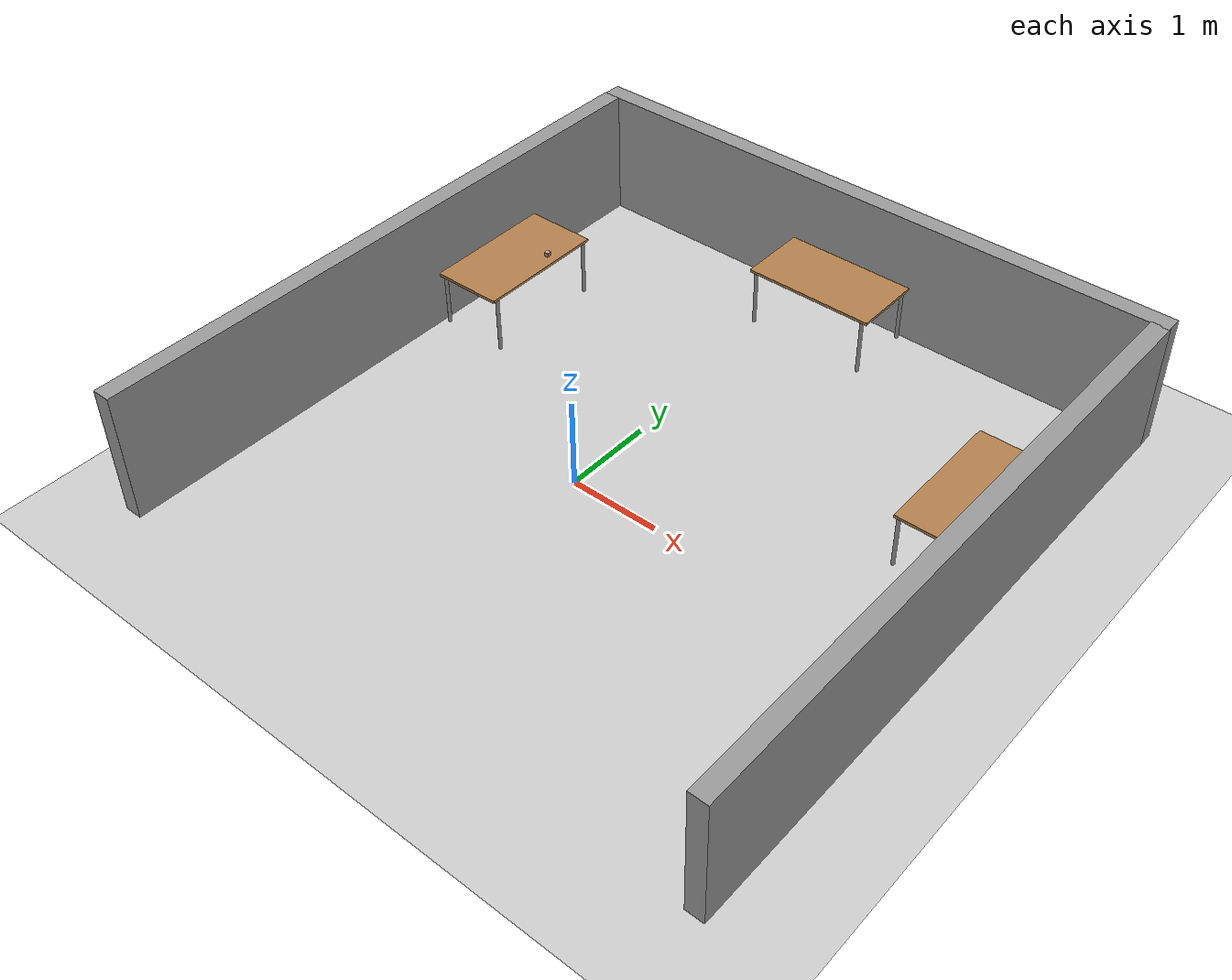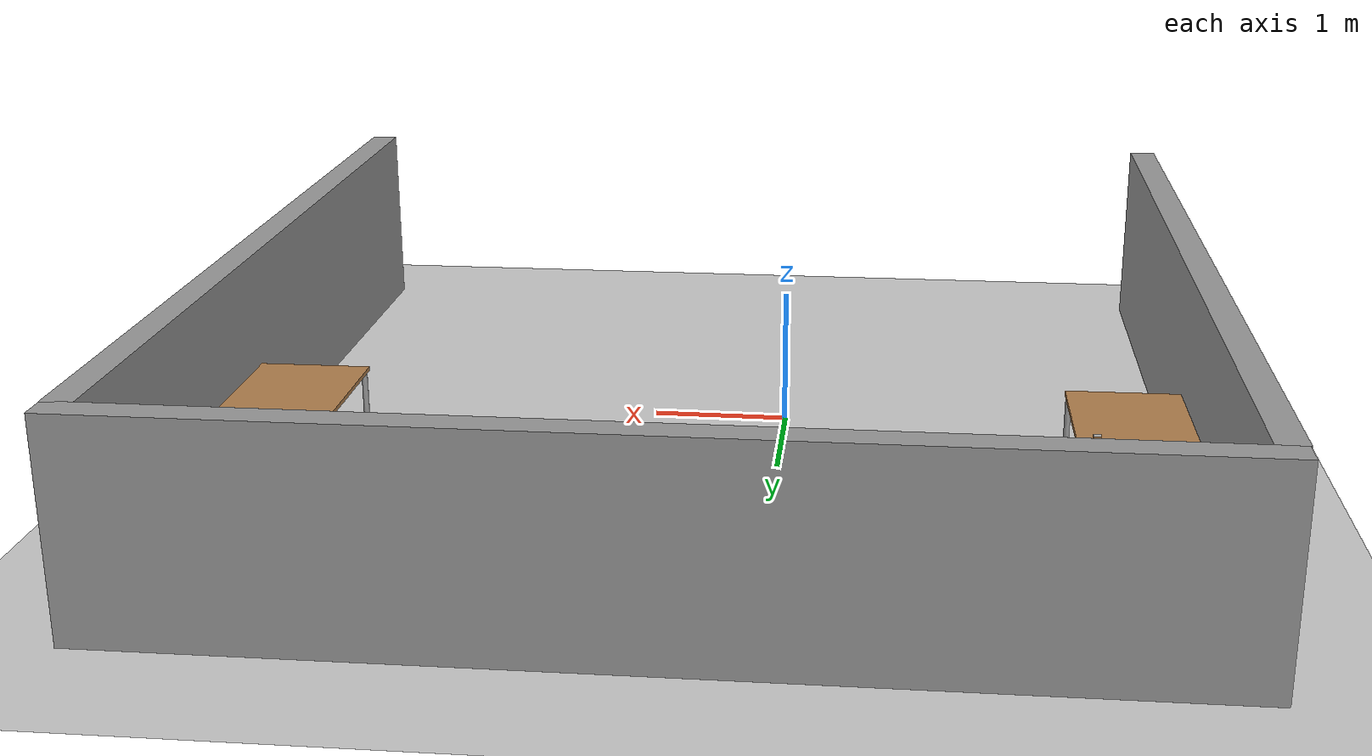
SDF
<sdf version="1.7">
 <world name="default">
  <model name="ground_plane">
   <static>1</static>
   <link name="link">
    <collision name="collision">
     <geometry><plane><normal>0 0 1</normal><size>100 100</size></plane></geometry>
     <surface>
      <contact><collide_bitmask>65535</collide_bitmask></contact>
      <friction><ode><mu>100</mu><mu2>50</mu2></ode></friction>
     </surface>
    </collision>
    <visual name="visual">
     <cast_shadows>0</cast_shadows>
     <geometry><plane><normal>0 0 1</normal><size>100 100</size></plane></geometry>
     <material>
      <script><uri>file://media/materials/scripts/gazebo.material</uri><name>Gazebo/Grey</name></script>
     </material>
    </visual>
   </link>
  </model>
  <model name="wood_cube_2">
   <link name="link">
    <pose>0 0 0.025 0 -0 0</pose>
    <inertial>
     <mass>0.0565</mass>
     <inertia>
      <ixx>2.35417e-05</ixx>
      <ixy>0</ixy>
      <ixz>0</ixz>
      <iyy>2.35417e-05</iyy>
      <iyz>0</iyz>
      <izz>2.35417e-05</izz>
     </inertia>
    </inertial>
    <collision name="collision">
     <geometry><box><size>0.05 0.05 0.05</size></box></geometry>
     <surface>
      <contact>
       <poissons_ratio>0.347</poissons_ratio>
       <elastic_modulus>8.8e+09</elastic_modulus>
       <ode><kp>100000</kp><kd>1</kd><max_vel>1</max_vel><min_depth>0.001</min_depth></ode>
      </contact>
      <friction>
       <torsional>
        <coefficient>1</coefficient>
        <use_patch_radius>0</use_patch_radius>
        <surface_radius>0.05</surface_radius>
       </torsional>
      </friction>
     </surface>
    </collision>
    <visual name="visual">
     <geometry><box><size>0.05 0.05 0.05</size></box></geometry>
     <material>
      <script><uri>file://media/materials/scripts/gazebo.material</uri><name>Gazebo/Wood</name></script>
     </material>
    </visual>
   </link>
   <frame name="Apriltag36_11_00002::__model__" attached_to="Apriltag36_11_00002::main">
    <pose relative_to="__model__">0 0 0.05 0 -0 0</pose>
   </frame>
   <link name="Apriltag36_11_00002::main">
    <pose relative_to="Apriltag36_11_00002::__model__">0 0 0 0 -0 0</pose>
    <visual name="main_Visual">
     <geometry><box><size>0.05 0.05 0.001</size></box></geometry>
     <material>
      <script>
       <uri>model://Apriltag36_11_00002/materials/scripts</uri>
       <uri>model://Apriltag36_11_00002/materials/textures</uri>
       <name>Apriltag36_11_00002</name>
      </script>
     </material>
    </visual>
    <inertial>
     <inertia><ixx>1</ixx><ixy>0</ixy><ixz>0</ixz><iyy>1</iyy><iyz>0</iyz><izz>1</izz></inertia>
     <mass>1</mass>
    </inertial>
   </link>
   <static>0</static>
   <joint name="Apriltag36_11_00002_joint" type="fixed">
    <child>Apriltag36_11_00002::main</child>
    <parent>link</parent>
   </joint>
   <pose>-2.15395 1.98713 0.663974 0 1e-06 1e-06</pose>
  </model>
  <model name="table_0_clone">
   <static>1</static>
   <link name="link">
    <collision name="surface">
     <pose>0 0 0.65 0 -0 0</pose>
     <geometry><box><size>1.5 0.8 0.03</size></box></geometry>
     <surface><friction><ode><mu>0.6</mu><mu2>0.6</mu2></ode></friction></surface>
    </collision>
    <visual name="visual1">
     <pose>0 0 0.65 0 -0 0</pose>
     <geometry><box><size>1.5 0.8 0.03</size></box></geometry>
     <material>
      <script><uri>file://media/materials/scripts/gazebo.material</uri><name>Gazebo/Wood</name></script>
     </material>
    </visual>
    <collision name="front_left_leg">
     <pose>0.68 0.38 0.32 0 -0 0</pose>
     <geometry><cylinder><radius>0.02</radius><length>0.65</length></cylinder></geometry>
    </collision>
    <visual name="front_left_leg">
     <pose>0.68 0.38 0.32 0 -0 0</pose>
     <geometry><cylinder><radius>0.02</radius><length>0.65</length></cylinder></geometry>
     <material>
      <script><uri>file://media/materials/scripts/gazebo.material</uri><name>Gazebo/Grey</name></script>
     </material>
    </visual>
    <collision name="front_right_leg">
     <pose>0.68 -0.38 0.32 0 -0 0</pose>
     <geometry><cylinder><radius>0.02</radius><length>0.65</length></cylinder></geometry>
    </collision>
    <visual name="front_right_leg">
     <pose>0.68 -0.38 0.32 0 -0 0</pose>
     <geometry><cylinder><radius>0.02</radius><length>0.65</length></cylinder></geometry>
     <material>
      <script><uri>file://media/materials/scripts/gazebo.material</uri><name>Gazebo/Grey</name></script>
     </material>
    </visual>
    <collision name="back_right_leg">
     <pose>-0.68 -0.38 0.32 0 -0 0</pose>
     <geometry><cylinder><radius>0.02</radius><length>0.65</length></cylinder></geometry>
    </collision>
    <visual name="back_right_leg">
     <pose>-0.68 -0.38 0.32 0 -0 0</pose>
     <geometry><cylinder><radius>0.02</radius><length>0.65</length></cylinder></geometry>
     <material>
      <script><uri>file://media/materials/scripts/gazebo.material</uri><name>Gazebo/Grey</name></script>
     </material>
    </visual>
    <collision name="back_left_leg">
     <pose>-0.68 0.38 0.32 0 -0 0</pose>
     <geometry><cylinder><radius>0.02</radius><length>0.65</length></cylinder></geometry>
    </collision>
    <visual name="back_left_leg">
     <pose>-0.68 0.38 0.32 0 -0 0</pose>
     <geometry><cylinder><radius>0.02</radius><length>0.65</length></cylinder></geometry>
     <material>
      <script><uri>file://media/materials/scripts/gazebo.material</uri><name>Gazebo/Grey</name></script>
     </material>
    </visual>
   </link>
   <pose>0.443345 3.59142 0 0 -0 0</pose>
  </model>
  <model name="table_0_clone_clone_clone">
   <static>1</static>
   <link name="link">
    <collision name="surface">
     <pose>0 0 0.65 0 -0 0</pose>
     <geometry><box><size>1.5 0.8 0.03</size></box></geometry>
     <surface><friction><ode><mu>0.6</mu><mu2>0.6</mu2></ode></friction></surface>
    </collision>
    <visual name="visual1">
     <pose>0 0 0.65 0 -0 0</pose>
     <geometry><box><size>1.5 0.8 0.03</size></box></geometry>
     <material>
      <script><uri>file://media/materials/scripts/gazebo.material</uri><name>Gazebo/Wood</name></script>
     </material>
    </visual>
    <collision name="front_left_leg">
     <pose>0.68 0.38 0.32 0 -0 0</pose>
     <geometry><cylinder><radius>0.02</radius><length>0.65</length></cylinder></geometry>
    </collision>
    <visual name="front_left_leg">
     <pose>0.68 0.38 0.32 0 -0 0</pose>
     <geometry><cylinder><radius>0.02</radius><length>0.65</length></cylinder></geometry>
     <material>
      <script><uri>file://media/materials/scripts/gazebo.material</uri><name>Gazebo/Grey</name></script>
     </material>
    </visual>
    <collision name="front_right_leg">
     <pose>0.68 -0.38 0.32 0 -0 0</pose>
     <geometry><cylinder><radius>0.02</radius><length>0.65</length></cylinder></geometry>
    </collision>
    <visual name="front_right_leg">
     <pose>0.68 -0.38 0.32 0 -0 0</pose>
     <geometry><cylinder><radius>0.02</radius><length>0.65</length></cylinder></geometry>
     <material>
      <script><uri>file://media/materials/scripts/gazebo.material</uri><name>Gazebo/Grey</name></script>
     </material>
    </visual>
    <collision name="back_right_leg">
     <pose>-0.68 -0.38 0.32 0 -0 0</pose>
     <geometry><cylinder><radius>0.02</radius><length>0.65</length></cylinder></geometry>
    </collision>
    <visual name="back_right_leg">
     <pose>-0.68 -0.38 0.32 0 -0 0</pose>
     <geometry><cylinder><radius>0.02</radius><length>0.65</length></cylinder></geometry>
     <material>
      <script><uri>file://media/materials/scripts/gazebo.material</uri><name>Gazebo/Grey</name></script>
     </material>
    </visual>
    <collision name="back_left_leg">
     <pose>-0.68 0.38 0.32 0 -0 0</pose>
     <geometry><cylinder><radius>0.02</radius><length>0.65</length></cylinder></geometry>
    </collision>
    <visual name="back_left_leg">
     <pose>-0.68 0.38 0.32 0 -0 0</pose>
     <geometry><cylinder><radius>0.02</radius><length>0.65</length></cylinder></geometry>
     <material>
      <script><uri>file://media/materials/scripts/gazebo.material</uri><name>Gazebo/Grey</name></script>
     </material>
    </visual>
   </link>
   <pose>-2.42573 1.75529 0 0 -0 1.57675</pose>
  </model>
  <model name="table_0_clone_clone_clone_1">
   <static>1</static>
   <link name="link">
    <collision name="surface">
     <pose>0 0 0.65 0 -0 0</pose>
     <geometry><box><size>1.5 0.8 0.03</size></box></geometry>
     <surface><friction><ode><mu>0.6</mu><mu2>0.6</mu2></ode></friction></surface>
    </collision>
    <visual name="visual1">
     <pose>0 0 0.65 0 -0 0</pose>
     <geometry><box><size>1.5 0.8 0.03</size></box></geometry>
     <material>
      <script><uri>file://media/materials/scripts/gazebo.material</uri><name>Gazebo/Wood</name></script>
     </material>
    </visual>
    <collision name="front_left_leg">
     <pose>0.68 0.38 0.32 0 -0 0</pose>
     <geometry><cylinder><radius>0.02</radius><length>0.65</length></cylinder></geometry>
    </collision>
    <visual name="front_left_leg">
     <pose>0.68 0.38 0.32 0 -0 0</pose>
     <geometry><cylinder><radius>0.02</radius><length>0.65</length></cylinder></geometry>
     <material>
      <script><uri>file://media/materials/scripts/gazebo.material</uri><name>Gazebo/Grey</name></script>
     </material>
    </visual>
    <collision name="front_right_leg">
     <pose>0.68 -0.38 0.32 0 -0 0</pose>
     <geometry><cylinder><radius>0.02</radius><length>0.65</length></cylinder></geometry>
    </collision>
    <visual name="front_right_leg">
     <pose>0.68 -0.38 0.32 0 -0 0</pose>
     <geometry><cylinder><radius>0.02</radius><length>0.65</length></cylinder></geometry>
     <material>
      <script><uri>file://media/materials/scripts/gazebo.material</uri><name>Gazebo/Grey</name></script>
     </material>
    </visual>
    <collision name="back_right_leg">
     <pose>-0.68 -0.38 0.32 0 -0 0</pose>
     <geometry><cylinder><radius>0.02</radius><length>0.65</length></cylinder></geometry>
    </collision>
    <visual name="back_right_leg">
     <pose>-0.68 -0.38 0.32 0 -0 0</pose>
     <geometry><cylinder><radius>0.02</radius><length>0.65</length></cylinder></geometry>
     <material>
      <script><uri>file://media/materials/scripts/gazebo.material</uri><name>Gazebo/Grey</name></script>
     </material>
    </visual>
    <collision name="back_left_leg">
     <pose>-0.68 0.38 0.32 0 -0 0</pose>
     <geometry><cylinder><radius>0.02</radius><length>0.65</length></cylinder></geometry>
    </collision>
    <visual name="back_left_leg">
     <pose>-0.68 0.38 0.32 0 -0 0</pose>
     <geometry><cylinder><radius>0.02</radius><length>0.65</length></cylinder></geometry>
     <material>
      <script><uri>file://media/materials/scripts/gazebo.material</uri><name>Gazebo/Grey</name></script>
     </material>
    </visual>
   </link>
   <pose>3.36807 1.74161 0 0 -0 1.57675</pose>
  </model>
  <model name="grey_wall_clone">
   <link name="link">
    <pose>-2.24116 0.206819 1.41112 0 -0 0</pose>
    <inertial>
     <inertia><ixx>0</ixx><ixy>0</ixy><ixz>0</ixz><iyy>0</iyy><iyz>0</iyz><izz>0</izz></inertia>
     <mass>0</mass>
    </inertial>
    <visual name="visual">
     <cast_shadows>0</cast_shadows>
     <geometry><box><size>7.03146 0.2 1.4608</size></box></geometry>
     <material>
      <script>
       <uri>model://grey_wall/materials/scripts</uri>
       <uri>model://grey_wall/materials/textures</uri>
       <name>vrc/grey_wall</name>
      </script>
      <shader type="pixel"/>
     </material>
    </visual>
    <collision name="collision">
     <geometry><box><size>7.03146 0.2 1.4608</size></box></geometry>
     <surface>
      <friction>
       <ode><mu>1</mu><mu2>1</mu2><fdir1>0 0 0</fdir1><slip1>0</slip1><slip2>0</slip2></ode>
       <torsional>
        <coefficient>1</coefficient>
        <patch_radius>0</patch_radius>
        <surface_radius>0</surface_radius>
        <use_patch_radius>1</use_patch_radius>
        <ode><slip>0</slip></ode>
       </torsional>
      </friction>
      <bounce><restitution_coefficient>0</restitution_coefficient><threshold>1e+06</threshold></bounce>
      <contact>
       <collide_without_contact>0</collide_without_contact>
       <collide_without_contact_bitmask>1</collide_without_contact_bitmask>
       <collide_bitmask>1</collide_bitmask>
       <ode>
        <soft_cfm>0</soft_cfm>
        <soft_erp>0.2</soft_erp>
        <kp>1e+13</kp>
        <kd>1</kd>
        <max_vel>0.01</max_vel>
        <min_depth>0</min_depth>
       </ode>
       <bullet>
        <split_impulse>1</split_impulse>
        <split_impulse_penetration_threshold>-0.01</split_impulse_penetration_threshold>
        <soft_cfm>0</soft_cfm>
        <soft_erp>0.2</soft_erp>
        <kp>1e+13</kp>
        <kd>1</kd>
       </bullet>
      </contact>
     </surface>
    </collision>
   </link>
   <static>1</static>
   <pose>2.71641 3.89239 -0.667959 0 -0 0</pose>
  </model>
  <model name="grey_wall_clone_0">
   <link name="link">
    <pose>-2.24116 0.206819 1.41112 0 -0 0</pose>
    <inertial>
     <inertia><ixx>0</ixx><ixy>0</ixy><ixz>0</ixz><iyy>0</iyy><iyz>0</iyz><izz>0</izz></inertia>
     <mass>0</mass>
    </inertial>
    <visual name="visual">
     <cast_shadows>0</cast_shadows>
     <geometry><box><size>7.03146 0.2 1.4608</size></box></geometry>
     <material>
      <script>
       <uri>model://grey_wall/materials/scripts</uri>
       <uri>model://grey_wall/materials/textures</uri>
       <name>vrc/grey_wall</name>
      </script>
      <shader type="pixel"/>
     </material>
    </visual>
    <collision name="collision">
     <geometry><box><size>7.03146 0.2 1.4608</size></box></geometry>
     <surface>
      <friction>
       <ode><mu>1</mu><mu2>1</mu2><fdir1>0 0 0</fdir1><slip1>0</slip1><slip2>0</slip2></ode>
       <torsional>
        <coefficient>1</coefficient>
        <patch_radius>0</patch_radius>
        <surface_radius>0</surface_radius>
        <use_patch_radius>1</use_patch_radius>
        <ode><slip>0</slip></ode>
       </torsional>
      </friction>
      <bounce><restitution_coefficient>0</restitution_coefficient><threshold>1e+06</threshold></bounce>
      <contact>
       <collide_without_contact>0</collide_without_contact>
       <collide_without_contact_bitmask>1</collide_without_contact_bitmask>
       <collide_bitmask>1</collide_bitmask>
       <ode>
        <soft_cfm>0</soft_cfm>
        <soft_erp>0.2</soft_erp>
        <kp>1e+13</kp>
        <kd>1</kd>
        <max_vel>0.01</max_vel>
        <min_depth>0</min_depth>
       </ode>
       <bullet>
        <split_impulse>1</split_impulse>
        <split_impulse_penetration_threshold>-0.01</split_impulse_penetration_threshold>
        <soft_cfm>0</soft_cfm>
        <soft_erp>0.2</soft_erp>
        <kp>1e+13</kp>
        <kd>1</kd>
       </bullet>
      </contact>
     </surface>
    </collision>
   </link>
   <static>1</static>
   <pose>4.10185 2.74431 -0.667959 0 -0 1.57085</pose>
  </model>
  <model name="grey_wall_clone_0_clone">
   <link name="link">
    <pose>-2.24116 0.206819 1.41112 0 -0 0</pose>
    <inertial>
     <inertia><ixx>0</ixx><ixy>0</ixy><ixz>0</ixz><iyy>0</iyy><iyz>0</iyz><izz>0</izz></inertia>
     <mass>0</mass>
    </inertial>
    <visual name="visual">
     <cast_shadows>0</cast_shadows>
     <geometry><box><size>7.03146 0.2 1.4608</size></box></geometry>
     <material>
      <script>
       <uri>model://grey_wall/materials/scripts</uri>
       <uri>model://grey_wall/materials/textures</uri>
       <name>vrc/grey_wall</name>
      </script>
      <shader type="pixel"/>
     </material>
    </visual>
    <collision name="collision">
     <geometry><box><size>7.03146 0.2 1.4608</size></box></geometry>
     <surface>
      <friction>
       <ode><mu>1</mu><mu2>1</mu2><fdir1>0 0 0</fdir1><slip1>0</slip1><slip2>0</slip2></ode>
       <torsional>
        <coefficient>1</coefficient>
        <patch_radius>0</patch_radius>
        <surface_radius>0</surface_radius>
        <use_patch_radius>1</use_patch_radius>
        <ode><slip>0</slip></ode>
       </torsional>
      </friction>
      <bounce><restitution_coefficient>0</restitution_coefficient><threshold>1e+06</threshold></bounce>
      <contact>
       <collide_without_contact>0</collide_without_contact>
       <collide_without_contact_bitmask>1</collide_without_contact_bitmask>
       <collide_bitmask>1</collide_bitmask>
       <ode>
        <soft_cfm>0</soft_cfm>
        <soft_erp>0.2</soft_erp>
        <kp>1e+13</kp>
        <kd>1</kd>
        <max_vel>0.01</max_vel>
        <min_depth>0</min_depth>
       </ode>
       <bullet>
        <split_impulse>1</split_impulse>
        <split_impulse_penetration_threshold>-0.01</split_impulse_penetration_threshold>
        <soft_cfm>0</soft_cfm>
        <soft_erp>0.2</soft_erp>
        <kp>1e+13</kp>
        <kd>1</kd>
       </bullet>
      </contact>
     </surface>
    </collision>
   </link>
   <static>1</static>
   <pose>-2.7442 2.72756 -0.667959 0 -0 1.57085</pose>
  </model>
 </world>
</sdf>
